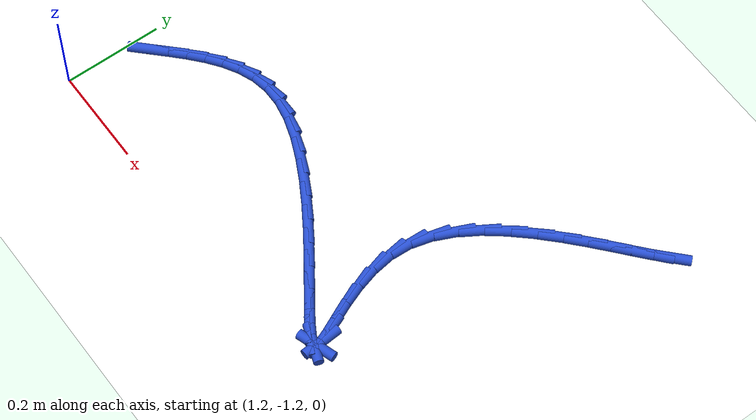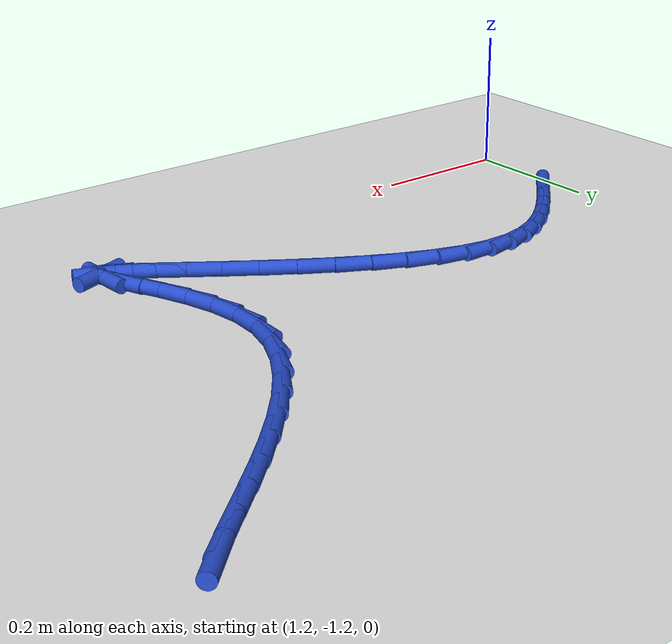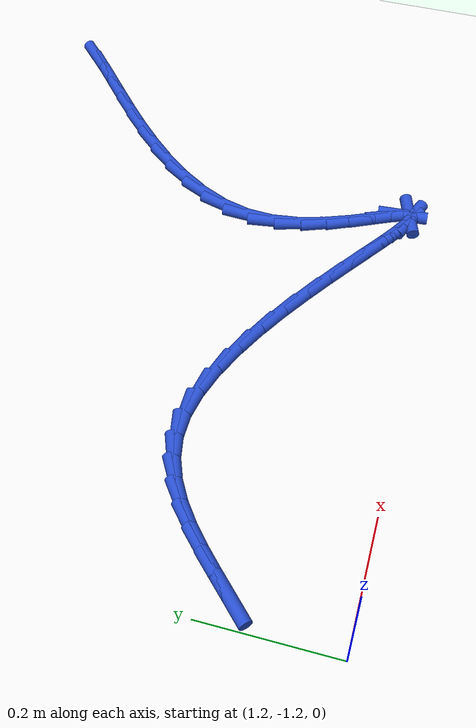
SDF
<sdf version="1.6">
 <world name="default">
  <model name="ground_plane">
   <static>1</static>
   <link name="link">
    <collision name="collision">
     <geometry><plane><normal>0 0 1</normal><size>100 100</size></plane></geometry>
     <surface><friction><ode><mu>100</mu><mu2>50</mu2></ode></friction></surface>
    </collision>
    <visual name="visual">
     <cast_shadows>0</cast_shadows>
     <geometry><plane><normal>0 0 1</normal><size>100 100</size></plane></geometry>
     <material>
      <script><uri>file://media/materials/scripts/gazebo.material</uri><name>Gazebo/WhiteGlow</name></script>
     </material>
    </visual>
   </link>
  </model>
  <model name="line">
   <link name="link_151">
    <pose>2.176874857344883 -0.5222042575214519 0.01 0 1.57 0.7550402408811342</pose>
    <collision name="collision">
     <geometry><cylinder><radius>0.01</radius><length>0.08</length></cylinder></geometry>
    </collision>
    <visual name="visual">
     <material>
      <script><name>Gazebo/Blue</name><uri>file://media/materials/scripts/gazebo.material</uri></script>
     </material>
     <geometry><cylinder><radius>0.01</radius><length>0.08</length></cylinder></geometry>
    </visual>
   </link>
   <link name="link_152">
    <pose>2.153794273978903 -0.5439243669617035 0.01 0 1.57 0.7183660839609166</pose>
    <collision name="collision">
     <geometry><cylinder><radius>0.01</radius><length>0.08</length></cylinder></geometry>
    </collision>
    <visual name="visual">
     <material>
      <script><name>Gazebo/Blue</name><uri>file://media/materials/scripts/gazebo.material</uri></script>
     </material>
     <geometry><cylinder><radius>0.01</radius><length>0.08</length></cylinder></geometry>
    </visual>
   </link>
   <link name="link_153">
    <pose>2.1254655001903866 -0.5686888493108901 0.01 0 1.57 0.7092152093109937</pose>
    <collision name="collision">
     <geometry><cylinder><radius>0.01</radius><length>0.08</length></cylinder></geometry>
    </collision>
    <visual name="visual">
     <material>
      <script><name>Gazebo/Blue</name><uri>file://media/materials/scripts/gazebo.material</uri></script>
     </material>
     <geometry><cylinder><radius>0.01</radius><length>0.08</length></cylinder></geometry>
    </visual>
   </link>
   <link name="link_154">
    <pose>2.0933209106118245 -0.5962742109933964 0.01 0 1.57 0.7183495197405786</pose>
    <collision name="collision">
     <geometry><cylinder><radius>0.01</radius><length>0.08</length></cylinder></geometry>
    </collision>
    <visual name="visual">
     <material>
      <script><name>Gazebo/Blue</name><uri>file://media/materials/scripts/gazebo.material</uri></script>
     </material>
     <geometry><cylinder><radius>0.01</radius><length>0.08</length></cylinder></geometry>
    </visual>
   </link>
   <link name="link_155">
    <pose>2.0587928798757082 -0.6264569584336068 0.01 0 1.57 0.7424698092515074</pose>
    <collision name="collision">
     <geometry><cylinder><radius>0.01</radius><length>0.08</length></cylinder></geometry>
    </collision>
    <visual name="visual">
     <material>
      <script><name>Gazebo/Blue</name><uri>file://media/materials/scripts/gazebo.material</uri></script>
     </material>
     <geometry><cylinder><radius>0.01</radius><length>0.08</length></cylinder></geometry>
    </visual>
   </link>
   <link name="link_156">
    <pose>2.0233137826145287 -0.6590135980559055 0.01 0 1.57 0.781227014142957</pose>
    <collision name="collision">
     <geometry><cylinder><radius>0.01</radius><length>0.08</length></cylinder></geometry>
    </collision>
    <visual name="visual">
     <material>
      <script><name>Gazebo/Blue</name><uri>file://media/materials/scripts/gazebo.material</uri></script>
     </material>
     <geometry><cylinder><radius>0.01</radius><length>0.08</length></cylinder></geometry>
    </visual>
   </link>
   <link name="link_157">
    <pose>1.9883159934607757 -0.6937206362846768 0.01 0 1.57 0.8362712718879275</pose>
    <collision name="collision">
     <geometry><cylinder><radius>0.01</radius><length>0.08</length></cylinder></geometry>
    </collision>
    <visual name="visual">
     <material>
      <script><name>Gazebo/Blue</name><uri>file://media/materials/scripts/gazebo.material</uri></script>
     </material>
     <geometry><cylinder><radius>0.01</radius><length>0.08</length></cylinder></geometry>
    </visual>
   </link>
   <link name="link_158">
    <pose>1.9552318870469403 -0.7303545795443049 0.01 0 1.57 0.9110529372834253</pose>
    <collision name="collision">
     <geometry><cylinder><radius>0.01</radius><length>0.08</length></cylinder></geometry>
    </collision>
    <visual name="visual">
     <material>
      <script><name>Gazebo/Blue</name><uri>file://media/materials/scripts/gazebo.material</uri></script>
     </material>
     <geometry><cylinder><radius>0.01</radius><length>0.08</length></cylinder></geometry>
    </visual>
   </link>
   <link name="link_159">
    <pose>1.9254938380055149 -0.7686919342591745 0.01 0 1.57 1.0108649007809962</pose>
    <collision name="collision">
     <geometry><cylinder><radius>0.01</radius><length>0.08</length></cylinder></geometry>
    </collision>
    <visual name="visual">
     <material>
      <script><name>Gazebo/Blue</name><uri>file://media/materials/scripts/gazebo.material</uri></script>
     </material>
     <geometry><cylinder><radius>0.01</radius><length>0.08</length></cylinder></geometry>
    </visual>
   </link>
   <link name="link_160">
    <pose>1.9005342209689888 -0.8085092068536697 0.01 0 1.57 1.1425770058714688</pose>
    <collision name="collision">
     <geometry><cylinder><radius>0.01</radius><length>0.08</length></cylinder></geometry>
    </collision>
    <visual name="visual">
     <material>
      <script><name>Gazebo/Blue</name><uri>file://media/materials/scripts/gazebo.material</uri></script>
     </material>
     <geometry><cylinder><radius>0.01</radius><length>0.08</length></cylinder></geometry>
    </visual>
   </link>
   <link name="link_161">
    <pose>1.881785410569853 -0.8495829037521745 0.01 0 1.57 1.3129188008033414</pose>
    <collision name="collision">
     <geometry><cylinder><radius>0.01</radius><length>0.08</length></cylinder></geometry>
    </collision>
    <visual name="visual">
     <material>
      <script><name>Gazebo/Blue</name><uri>file://media/materials/scripts/gazebo.material</uri></script>
     </material>
     <geometry><cylinder><radius>0.01</radius><length>0.08</length></cylinder></geometry>
    </visual>
   </link>
   <link name="link_162">
    <pose>1.8706797814405995 -0.8916895313790737 0.01 0 1.57 1.5203115295314953</pose>
    <collision name="collision">
     <geometry><cylinder><radius>0.01</radius><length>0.08</length></cylinder></geometry>
    </collision>
    <visual name="visual">
     <material>
      <script><name>Gazebo/Blue</name><uri>file://media/materials/scripts/gazebo.material</uri></script>
     </material>
     <geometry><cylinder><radius>0.01</radius><length>0.08</length></cylinder></geometry>
    </visual>
   </link>
   <link name="link_163">
    <pose>1.8685134788545403 -0.9345630687898243 0.01 0 1.57 -1.4327514281806857</pose>
    <collision name="collision">
     <geometry><cylinder><radius>0.01</radius><length>0.08</length></cylinder></geometry>
    </collision>
    <visual name="visual">
     <material>
      <script><name>Gazebo/Blue</name><uri>file://media/materials/scripts/gazebo.material</uri></script>
     </material>
     <geometry><cylinder><radius>0.01</radius><length>0.08</length></cylinder></geometry>
    </visual>
   </link>
   <link name="link_164">
    <pose>1.8744467913814198 -0.9772707344637778 0.01 0 1.57 -1.297891669014224</pose>
    <collision name="collision">
     <geometry><cylinder><radius>0.01</radius><length>0.08</length></cylinder></geometry>
    </collision>
    <visual name="visual">
     <material>
      <script><name>Gazebo/Blue</name><uri>file://media/materials/scripts/gazebo.material</uri></script>
     </material>
     <geometry><cylinder><radius>0.01</radius><length>0.08</length></cylinder></geometry>
    </visual>
   </link>
   <link name="link_165">
    <pose>1.8859445035424847 -1.0183504532931835 0.01 0 1.57 -1.2065070035665129</pose>
    <collision name="collision">
     <geometry><cylinder><radius>0.01</radius><length>0.08</length></cylinder></geometry>
    </collision>
    <visual name="visual">
     <material>
      <script><name>Gazebo/Blue</name><uri>file://media/materials/scripts/gazebo.material</uri></script>
     </material>
     <geometry><cylinder><radius>0.01</radius><length>0.08</length></cylinder></geometry>
    </visual>
   </link>
   <link name="link_166">
    <pose>1.90042471541322 -1.0563255764641535 0.01 0 1.57 -1.1515949877476435</pose>
    <collision name="collision">
     <geometry><cylinder><radius>0.01</radius><length>0.08</length></cylinder></geometry>
    </collision>
    <visual name="visual">
     <material>
      <script><name>Gazebo/Blue</name><uri>file://media/materials/scripts/gazebo.material</uri></script>
     </material>
     <geometry><cylinder><radius>0.01</radius><length>0.08</length></cylinder></geometry>
    </visual>
   </link>
   <link name="link_167">
    <pose>1.9153055270691084 -1.0897194551627987 0.01 0 1.57 -1.1358912789690254</pose>
    <collision name="collision">
     <geometry><cylinder><radius>0.01</radius><length>0.08</length></cylinder></geometry>
    </collision>
    <visual name="visual">
     <material>
      <script><name>Gazebo/Blue</name><uri>file://media/materials/scripts/gazebo.material</uri></script>
     </material>
     <geometry><cylinder><radius>0.01</radius><length>0.08</length></cylinder></geometry>
    </visual>
   </link>
   <link name="link_168">
    <pose>1.928005038585634 -1.1170554405752302 0.01 0 1.57 -1.1896051417419267</pose>
    <collision name="collision">
     <geometry><cylinder><radius>0.01</radius><length>0.08</length></cylinder></geometry>
    </collision>
    <visual name="visual">
     <material>
      <script><name>Gazebo/Blue</name><uri>file://media/materials/scripts/gazebo.material</uri></script>
     </material>
     <geometry><cylinder><radius>0.01</radius><length>0.08</length></cylinder></geometry>
    </visual>
   </link>
   <link name="link_169">
    <pose>1.9359413500382818 -1.1368568838875597 0.01 0 1.57 -1.5004168844496792</pose>
    <collision name="collision">
     <geometry><cylinder><radius>0.01</radius><length>0.08</length></cylinder></geometry>
    </collision>
    <visual name="visual">
     <material>
      <script><name>Gazebo/Blue</name><uri>file://media/materials/scripts/gazebo.material</uri></script>
     </material>
     <geometry><cylinder><radius>0.01</radius><length>0.08</length></cylinder></geometry>
    </visual>
   </link>
   <link name="link_170">
    <pose>1.9367119836778706 -1.147788496999933 0.01 0 1.57 0.317351224318342</pose>
    <collision name="collision">
     <geometry><cylinder><radius>0.01</radius><length>0.08</length></cylinder></geometry>
    </collision>
    <visual name="visual">
     <material>
      <script><name>Gazebo/Blue</name><uri>file://media/materials/scripts/gazebo.material</uri></script>
     </material>
     <geometry><cylinder><radius>0.01</radius><length>0.08</length></cylinder></geometry>
    </visual>
   </link>
   <link name="link_171">
    <pose>1.9298521445022792 -1.150041627058023 0.01 0 1.57 -0.367484482488524</pose>
    <collision name="collision">
     <geometry><cylinder><radius>0.01</radius><length>0.08</length></cylinder></geometry>
    </collision>
    <visual name="visual">
     <material>
      <script><name>Gazebo/Blue</name><uri>file://media/materials/scripts/gazebo.material</uri></script>
     </material>
     <geometry><cylinder><radius>0.01</radius><length>0.08</length></cylinder></geometry>
    </visual>
   </link>
   <link name="link_172">
    <pose>1.916080245614828 -1.1447398311883694 0.01 0 1.57 -0.5311782277793503</pose>
    <collision name="collision">
     <geometry><cylinder><radius>0.01</radius><length>0.08</length></cylinder></geometry>
    </collision>
    <visual name="visual">
     <material>
      <script><name>Gazebo/Blue</name><uri>file://media/materials/scripts/gazebo.material</uri></script>
     </material>
     <geometry><cylinder><radius>0.01</radius><length>0.08</length></cylinder></geometry>
    </visual>
   </link>
   <link name="link_173">
    <pose>1.8961316209249828 -1.1330199978531421 0.01 0 1.57 -0.5900259263244468</pose>
    <collision name="collision">
     <geometry><cylinder><radius>0.01</radius><length>0.08</length></cylinder></geometry>
    </collision>
    <visual name="visual">
     <material>
      <script><name>Gazebo/Blue</name><uri>file://media/materials/scripts/gazebo.material</uri></script>
     </material>
     <geometry><cylinder><radius>0.01</radius><length>0.08</length></cylinder></geometry>
    </visual>
   </link>
   <link name="link_174">
    <pose>1.8707416043422087 -1.1160190155145084 0.01 0 1.57 -0.6124630361683426</pose>
    <collision name="collision">
     <geometry><cylinder><radius>0.01</radius><length>0.08</length></cylinder></geometry>
    </collision>
    <visual name="visual">
     <material>
      <script><name>Gazebo/Blue</name><uri>file://media/materials/scripts/gazebo.material</uri></script>
     </material>
     <geometry><cylinder><radius>0.01</radius><length>0.08</length></cylinder></geometry>
    </visual>
   </link>
   <link name="link_175">
    <pose>1.8406455297759718 -1.0948737726346387 0.01 0 1.57 -0.6167261697026993</pose>
    <collision name="collision">
     <geometry><cylinder><radius>0.01</radius><length>0.08</length></cylinder></geometry>
    </collision>
    <visual name="visual">
     <material>
      <script><name>Gazebo/Blue</name><uri>file://media/materials/scripts/gazebo.material</uri></script>
     </material>
     <geometry><cylinder><radius>0.01</radius><length>0.08</length></cylinder></geometry>
    </visual>
   </link>
   <link name="link_176">
    <pose>1.8065787311357386 -1.0707211576757019 0.01 0 1.57 -0.6091330946394594</pose>
    <collision name="collision">
     <geometry><cylinder><radius>0.01</radius><length>0.08</length></cylinder></geometry>
    </collision>
    <visual name="visual">
     <material>
      <script><name>Gazebo/Blue</name><uri>file://media/materials/scripts/gazebo.material</uri></script>
     </material>
     <geometry><cylinder><radius>0.01</radius><length>0.08</length></cylinder></geometry>
    </visual>
   </link>
   <link name="link_177">
    <pose>1.7692765423309726 -1.0446980590998658 0.01 0 1.57 -0.5918517089889693</pose>
    <collision name="collision">
     <geometry><cylinder><radius>0.01</radius><length>0.08</length></cylinder></geometry>
    </collision>
    <visual name="visual">
     <material>
      <script><name>Gazebo/Blue</name><uri>file://media/materials/scripts/gazebo.material</uri></script>
     </material>
     <geometry><cylinder><radius>0.01</radius><length>0.08</length></cylinder></geometry>
    </visual>
   </link>
   <link name="link_178">
    <pose>1.7294742972711403 -1.0179413653692997 0.01 0 1.57 -0.5650440865279676</pose>
    <collision name="collision">
     <geometry><cylinder><radius>0.01</radius><length>0.08</length></cylinder></geometry>
    </collision>
    <visual name="visual">
     <material>
      <script><name>Gazebo/Blue</name><uri>file://media/materials/scripts/gazebo.material</uri></script>
     </material>
     <geometry><cylinder><radius>0.01</radius><length>0.08</length></cylinder></geometry>
    </visual>
   </link>
   <link name="link_179">
    <pose>1.6879073298657081 -0.9915879649461729 0.01 0 1.57 -0.5274672092850716</pose>
    <collision name="collision">
     <geometry><cylinder><radius>0.01</radius><length>0.08</length></cylinder></geometry>
    </collision>
    <visual name="visual">
     <material>
      <script><name>Gazebo/Blue</name><uri>file://media/materials/scripts/gazebo.material</uri></script>
     </material>
     <geometry><cylinder><radius>0.01</radius><length>0.08</length></cylinder></geometry>
    </visual>
   </link>
   <link name="link_180">
    <pose>1.6453109740241407 -0.9667747462926543 0.01 0 1.57 -0.47645199893130197</pose>
    <collision name="collision">
     <geometry><cylinder><radius>0.01</radius><length>0.08</length></cylinder></geometry>
    </collision>
    <visual name="visual">
     <material>
      <script><name>Gazebo/Blue</name><uri>file://media/materials/scripts/gazebo.material</uri></script>
     </material>
     <geometry><cylinder><radius>0.01</radius><length>0.08</length></cylinder></geometry>
    </visual>
   </link>
   <link name="link_181">
    <pose>1.6024205636559041 -0.9446385978709126 0.01 0 1.57 -0.4074703324002406</pose>
    <collision name="collision">
     <geometry><cylinder><radius>0.01</radius><length>0.08</length></cylinder></geometry>
    </collision>
    <visual name="visual">
     <material>
      <script><name>Gazebo/Blue</name><uri>file://media/materials/scripts/gazebo.material</uri></script>
     </material>
     <geometry><cylinder><radius>0.01</radius><length>0.08</length></cylinder></geometry>
    </visual>
   </link>
   <link name="link_182">
    <pose>1.5599714326704635 -0.9263164081431168 0.01 0 1.57 -0.3133062671476744</pose>
    <collision name="collision">
     <geometry><cylinder><radius>0.01</radius><length>0.08</length></cylinder></geometry>
    </collision>
    <visual name="visual">
     <material>
      <script><name>Gazebo/Blue</name><uri>file://media/materials/scripts/gazebo.material</uri></script>
     </material>
     <geometry><cylinder><radius>0.01</radius><length>0.08</length></cylinder></geometry>
    </visual>
   </link>
   <link name="link_183">
    <pose>1.5186989149772847 -0.9129450655714357 0.01 0 1.57 -0.18297847476174559</pose>
    <collision name="collision">
     <geometry><cylinder><radius>0.01</radius><length>0.08</length></cylinder></geometry>
    </collision>
    <visual name="visual">
     <material>
      <script><name>Gazebo/Blue</name><uri>file://media/materials/scripts/gazebo.material</uri></script>
     </material>
     <geometry><cylinder><radius>0.01</radius><length>0.08</length></cylinder></geometry>
    </visual>
   </link>
   <link name="link_184">
    <pose>1.479338344485834 -0.9056614586180387 0.01 0 1.57 -0.005028962838033529</pose>
    <collision name="collision">
     <geometry><cylinder><radius>0.01</radius><length>0.08</length></cylinder></geometry>
    </collision>
    <visual name="visual">
     <material>
      <script><name>Gazebo/Blue</name><uri>file://media/materials/scripts/gazebo.material</uri></script>
     </material>
     <geometry><cylinder><radius>0.01</radius><length>0.08</length></cylinder></geometry>
    </visual>
   </link>
   <link name="link_185">
    <pose>1.4425578929894747 -0.9054764895349766 0.01 0 1.57 0.1924008812701734</pose>
    <collision name="collision">
     <geometry><cylinder><radius>0.01</radius><length>0.08</length></cylinder></geometry>
    </collision>
    <visual name="visual">
     <material>
      <script><name>Gazebo/Blue</name><uri>file://media/materials/scripts/gazebo.material</uri></script>
     </material>
     <geometry><cylinder><radius>0.01</radius><length>0.08</length></cylinder></geometry>
    </visual>
   </link>
   <link name="link_186">
    <pose>1.4083534122587766 -0.9121398875116451 0.01 0 1.57 0.3731369840672259</pose>
    <collision name="collision">
     <geometry><cylinder><radius>0.01</radius><length>0.08</length></cylinder></geometry>
    </collision>
    <visual name="visual">
     <material>
      <script><name>Gazebo/Blue</name><uri>file://media/materials/scripts/gazebo.material</uri></script>
     </material>
     <geometry><cylinder><radius>0.01</radius><length>0.08</length></cylinder></geometry>
    </visual>
   </link>
   <link name="link_187">
    <pose>1.3763334909959375 -0.9246749334190278 0.01 0 1.57 0.5227827339849442</pose>
    <collision name="collision">
     <geometry><cylinder><radius>0.01</radius><length>0.08</length></cylinder></geometry>
    </collision>
    <visual name="visual">
     <material>
      <script><name>Gazebo/Blue</name><uri>file://media/materials/scripts/gazebo.material</uri></script>
     </material>
     <geometry><cylinder><radius>0.01</radius><length>0.08</length></cylinder></geometry>
    </visual>
   </link>
   <link name="link_188">
    <pose>1.3461020639400134 -0.9420961779806379 0.01 0 1.57 0.6366475185712898</pose>
    <collision name="collision">
     <geometry><cylinder><radius>0.01</radius><length>0.08</length></cylinder></geometry>
    </collision>
    <visual name="visual">
     <material>
      <script><name>Gazebo/Blue</name><uri>file://media/materials/scripts/gazebo.material</uri></script>
     </material>
     <geometry><cylinder><radius>0.01</radius><length>0.08</length></cylinder></geometry>
    </visual>
   </link>
   <link name="link_189">
    <pose>1.3172630658300615 -0.9634181719199887 0.01 0 1.57 0.7162813731020105</pose>
    <collision name="collision">
     <geometry><cylinder><radius>0.01</radius><length>0.08</length></cylinder></geometry>
    </collision>
    <visual name="visual">
     <material>
      <script><name>Gazebo/Blue</name><uri>file://media/materials/scripts/gazebo.material</uri></script>
     </material>
     <geometry><cylinder><radius>0.01</radius><length>0.08</length></cylinder></geometry>
    </visual>
   </link>
   <link name="link_190">
    <pose>1.2894204314051394 -0.9876554659605933 0.01 0 1.57 0.7652697908866268</pose>
    <collision name="collision">
     <geometry><cylinder><radius>0.01</radius><length>0.08</length></cylinder></geometry>
    </collision>
    <visual name="visual">
     <material>
      <script><name>Gazebo/Blue</name><uri>file://media/materials/scripts/gazebo.material</uri></script>
     </material>
     <geometry><cylinder><radius>0.01</radius><length>0.08</length></cylinder></geometry>
    </visual>
   </link>
   <link name="link_191">
    <pose>1.2621780954043038 -1.0138226108259647 0.01 0 1.57 0.7867544700760714</pose>
    <collision name="collision">
     <geometry><cylinder><radius>0.01</radius><length>0.08</length></cylinder></geometry>
    </collision>
    <visual name="visual">
     <material>
      <script><name>Gazebo/Blue</name><uri>file://media/materials/scripts/gazebo.material</uri></script>
     </material>
     <geometry><cylinder><radius>0.01</radius><length>0.08</length></cylinder></geometry>
    </visual>
   </link>
   <link name="link_192">
    <pose>1.2351399925666118 -1.0409341572396162 0.01 0 1.57 0.7840791580909295</pose>
    <collision name="collision">
     <geometry><cylinder><radius>0.01</radius><length>0.08</length></cylinder></geometry>
    </collision>
    <visual name="visual">
     <material>
      <script><name>Gazebo/Blue</name><uri>file://media/materials/scripts/gazebo.material</uri></script>
     </material>
     <geometry><cylinder><radius>0.01</radius><length>0.08</length></cylinder></geometry>
    </visual>
   </link>
  </model>
 </world>
</sdf>
